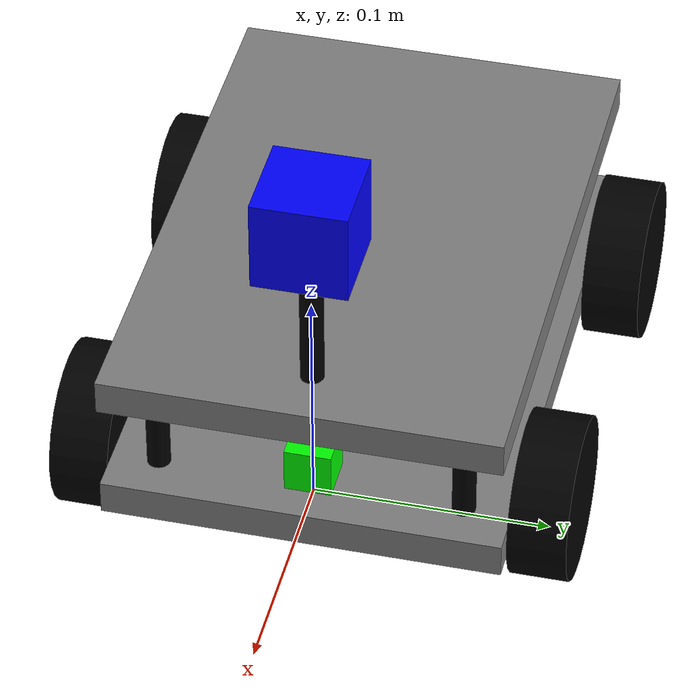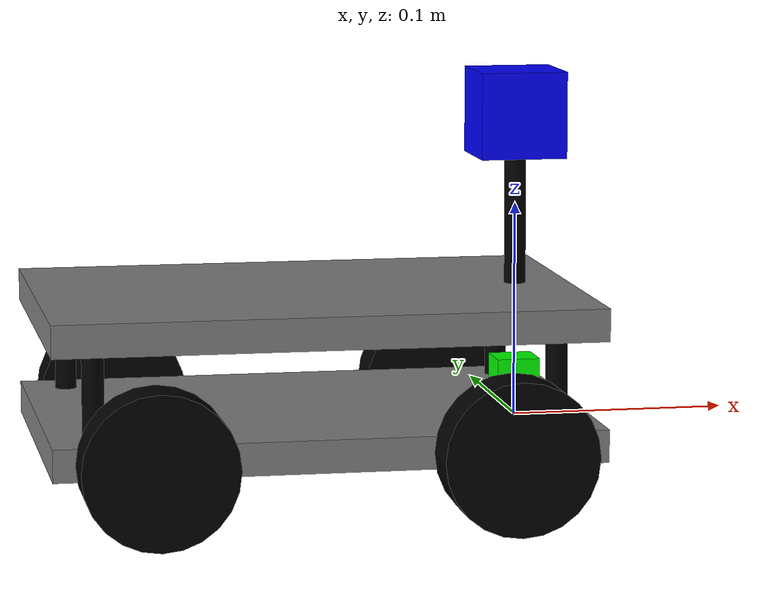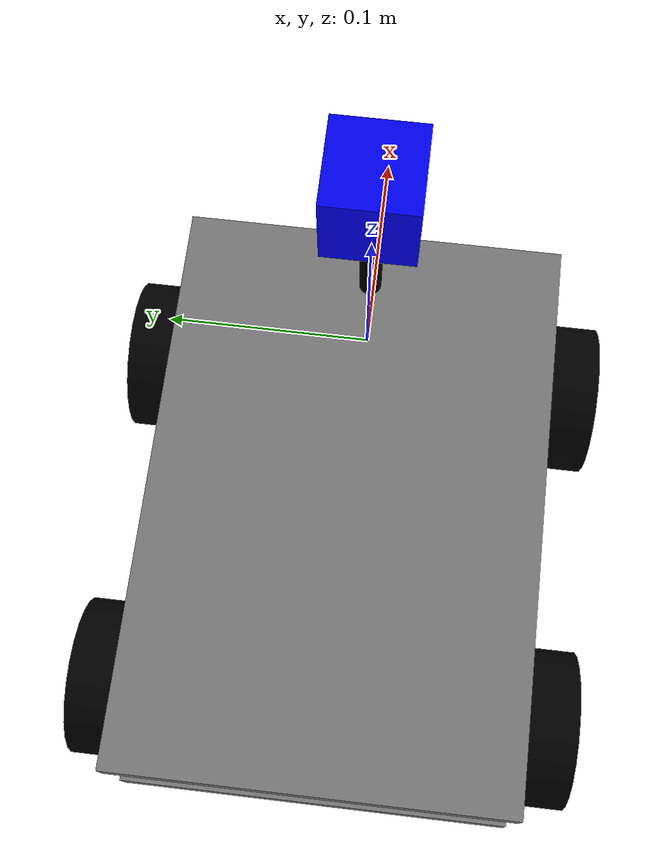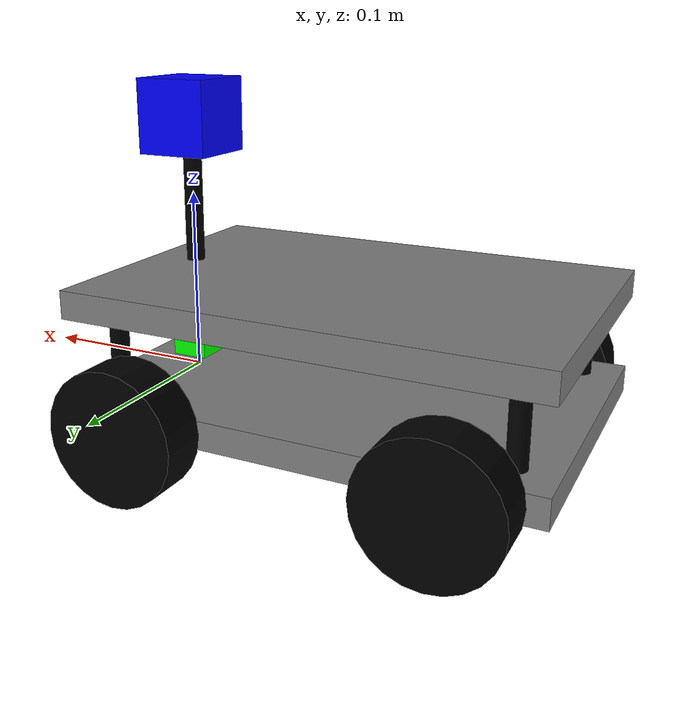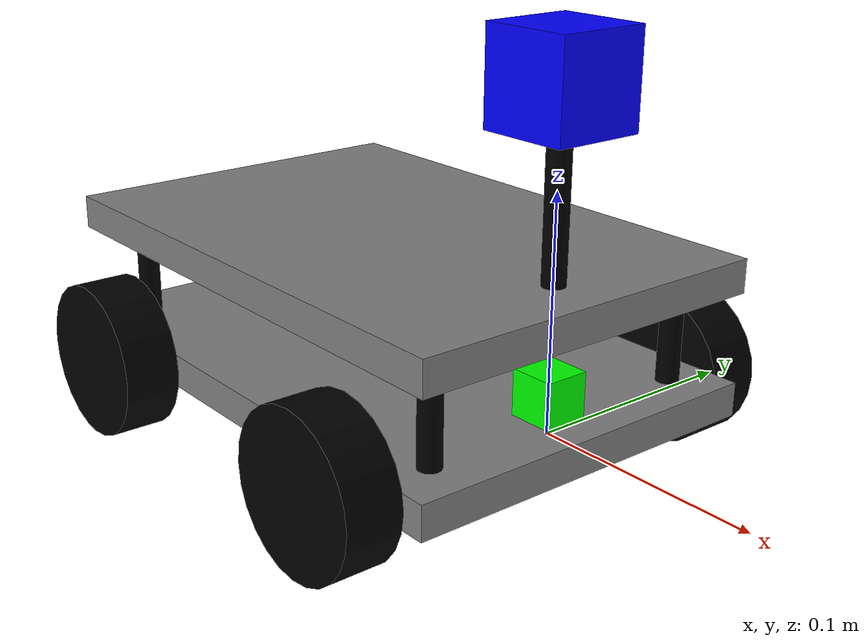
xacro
<?xml version="1.0"?>
<robot xmlns:xacro="http://www.ros.org/wiki/xacro" name="my_robot">

  <!-- ===================== XACRO ARGUMENTS ===================== -->
  <xacro:arg name="config_path" default="" />
  <xacro:property name="config_path" value="$(arg config_path)" />

  <!-- ===================== MATERIAL DEFINITIONS ===================== -->
  <material name="gray">
    <color rgba="0.5 0.5 0.5 1"/>
  </material>
  <material name="blue">
    <color rgba="0 0 1 1"/>
  </material>
  <material name="black">
    <color rgba="0 0 0 1"/>
  </material>
  <material name="green">
    <color rgba="0 1 0 1"/>
  </material>
  <material name="red">
    <color rgba="1 0 0 1"/>
  </material>

  <!-- ===================== PARAMETERS ===================== -->
  <xacro:property name="robot_length" value="0.25"/>
  <xacro:property name="robot_width" value="0.17"/>
  <xacro:property name="plank_height" value="0.015"/>
  <xacro:property name="plank_spacing" value="0.04"/>
  <xacro:property name="wheel_radius" value="0.035"/>
  <xacro:property name="wheel_width" value="0.025"/>
  <xacro:property name="rod_radius" value="0.005"/>
  <xacro:property name="rod_height" value="0.04"/>
  <xacro:property name="camera_mount_height" value="0.06"/>

  <!-- ===================== BASE LINK (Origin at camera X,Y position, ground Z) ===================== -->
  <link name="base_link"/>

  <!-- ===================== ROBOT BODY (Bottom Plank) ===================== -->
  <link name="robot_body">
    <visual>
      <geometry><box size="${robot_length} ${robot_width} ${plank_height}"/></geometry>
      <material name="gray"/>
    </visual>
    <collision>
      <geometry><box size="${robot_length} ${robot_width} ${plank_height}"/></geometry>
    </collision>
    <inertial>
      <mass value="1.5"/>
      <inertia ixx="0.01" iyy="0.015" izz="0.02" ixy="0" ixz="0" iyz="0"/>
      <origin xyz="0 0 0"/>
    </inertial>
  </link>

  <joint name="base_to_body_joint" type="fixed">
    <parent link="base_link"/>
    <child link="robot_body"/>
    <origin xyz="-0.10 0 0"/>
  </joint>

  <!-- ===================== TOP PLANK ===================== -->
  <link name="top_plank">
    <visual>
      <geometry><box size="${robot_length} ${robot_width} ${plank_height}"/></geometry>
      <material name="gray"/>
    </visual>
    <collision>
      <geometry><box size="${robot_length} ${robot_width} ${plank_height}"/></geometry>
    </collision>
    <inertial>
      <mass value="1.5"/>
      <inertia ixx="0.01" iyy="0.015" izz="0.02" ixy="0" ixz="0" iyz="0"/>
      <origin xyz="0 0 0"/>
    </inertial>
  </link>

  <joint name="top_plank_joint" type="fixed">
    <parent link="robot_body"/>
    <child link="top_plank"/>
    <origin xyz="0 0 ${plank_spacing + plank_height}"/>
  </joint>

  <!-- ===================== CORNER RODS ===================== -->
  <!-- Front Left Rod -->
  <link name="rod_fl">
    <visual>
      <geometry><cylinder radius="${rod_radius}" length="${rod_height}"/></geometry>
      <material name="black"/>
    </visual>
    <collision>
      <geometry><cylinder radius="${rod_radius}" length="${rod_height}"/></geometry>
    </collision>
    <inertial>
      <mass value="0.05"/>
      <inertia ixx="0.00001" iyy="0.00001" izz="0.00001" ixy="0" ixz="0" iyz="0"/>
    </inertial>
  </link>
  <joint name="rod_fl_joint" type="fixed">
    <parent link="robot_body"/>
    <child link="rod_fl"/>
    <origin xyz="${robot_length/2 - 0.02} ${robot_width/2 - 0.02} ${plank_height/2 + rod_height/2}"/>
  </joint>

  <!-- Front Right Rod -->
  <link name="rod_fr">
    <visual>
      <geometry><cylinder radius="${rod_radius}" length="${rod_height}"/></geometry>
      <material name="black"/>
    </visual>
    <collision>
      <geometry><cylinder radius="${rod_radius}" length="${rod_height}"/></geometry>
    </collision>
    <inertial>
      <mass value="0.05"/>
      <inertia ixx="0.00001" iyy="0.00001" izz="0.00001" ixy="0" ixz="0" iyz="0"/>
    </inertial>
  </link>
  <joint name="rod_fr_joint" type="fixed">
    <parent link="robot_body"/>
    <child link="rod_fr"/>
    <origin xyz="${robot_length/2 - 0.02} -${robot_width/2 - 0.02} ${plank_height/2 + rod_height/2}"/>
  </joint>

  <!-- Rear Left Rod -->
  <link name="rod_rl">
    <visual>
      <geometry><cylinder radius="${rod_radius}" length="${rod_height}"/></geometry>
      <material name="black"/>
    </visual>
    <collision>
      <geometry><cylinder radius="${rod_radius}" length="${rod_height}"/></geometry>
    </collision>
    <inertial>
      <mass value="0.05"/>
      <inertia ixx="0.00001" iyy="0.00001" izz="0.00001" ixy="0" ixz="0" iyz="0"/>
    </inertial>
  </link>
  <joint name="rod_rl_joint" type="fixed">
    <parent link="robot_body"/>
    <child link="rod_rl"/>
    <origin xyz="-${robot_length/2 - 0.02} ${robot_width/2 - 0.02} ${plank_height/2 + rod_height/2}"/>
  </joint>

  <!-- Rear Right Rod -->
  <link name="rod_rr">
    <visual>
      <geometry><cylinder radius="${rod_radius}" length="${rod_height}"/></geometry>
      <material name="black"/>
    </visual>
    <collision>
      <geometry><cylinder radius="${rod_radius}" length="${rod_height}"/></geometry>
    </collision>
    <inertial>
      <mass value="0.05"/>
      <inertia ixx="0.00001" iyy="0.00001" izz="0.00001" ixy="0" ixz="0" iyz="0"/>
    </inertial>
  </link>
  <joint name="rod_rr_joint" type="fixed">
    <parent link="robot_body"/>
    <child link="rod_rr"/>
    <origin xyz="-${robot_length/2 - 0.02} -${robot_width/2 - 0.02} ${plank_height/2 + rod_height/2}"/>
  </joint>

  <!-- ===================== CAMERA MOUNT ROD ===================== -->
  <link name="camera_mount">
    <visual>
      <geometry><cylinder radius="${rod_radius}" length="${camera_mount_height}"/></geometry>
      <material name="black"/>
    </visual>
    <collision>
      <geometry><cylinder radius="${rod_radius}" length="${camera_mount_height}"/></geometry>
    </collision>
    <inertial>
      <mass value="0.05"/>
      <inertia ixx="0.00001" iyy="0.00001" izz="0.00001" ixy="0" ixz="0" iyz="0"/>
    </inertial>
  </link>
  <joint name="camera_mount_joint" type="fixed">
    <parent link="top_plank"/>
    <child link="camera_mount"/>
    <origin xyz="0.10 0 ${plank_height/2 + camera_mount_height/2}"/>
  </joint>

  <!-- ===================== CAMERA LINK ===================== -->
  <link name="camera_link">
    <visual>
      <geometry><box size="0.04 0.04 0.04"/></geometry>
      <material name="blue"/>
    </visual>
    <collision>
      <geometry><box size="0.04 0.04 0.04"/></geometry>
    </collision>
    <inertial>
      <mass value="0.1"/>
      <origin xyz="0 0 0"/>
      <inertia ixx="0.00001" ixy="0.0" ixz="0.0"
               iyy="0.00001" iyz="0.0"
               izz="0.00001"/>
    </inertial>
  </link>

  <!-- Revolute joint for camera oscillation (improves feature tracking, not depth) -->
  <joint name="camera_pan_joint" type="continuous">
    <parent link="camera_mount"/>
    <child link="camera_link"/>
    <origin xyz="0 0 ${camera_mount_height/2 + 0.02}"/>
    <axis xyz="0 0 1"/>
    <dynamics damping="0.01" friction="0.0"/>
  </joint>

  <!-- Camera optical frame (ROS convention: Z forward, X right, Y down) -->
  <link name="camera_link_optical"/>

  <joint name="camera_optical_joint" type="fixed">
    <parent link="camera_link"/>
    <child link="camera_link_optical"/>
    <!-- Rotate from camera_link (Z up) to optical frame (Z forward) -->
    <origin xyz="0 0 0" rpy="${-pi/2} 0 ${-pi/2}"/>
  </joint>

  <!-- ===================== IMU LINK ===================== -->
  <link name="imu_link">
    <visual>
      <geometry><box size="0.02 0.02 0.02"/></geometry>
      <material name="green"/>
    </visual>
  </link>

  <joint name="imu_joint" type="fixed">
    <parent link="robot_body"/>
    <child link="imu_link"/>
    <origin xyz="0.10 0 ${plank_height/2 + 0.01}"/>
  </joint>

  <!-- ===================== WHEELS ===================== -->
  <!-- Front Left -->
  <link name="wheel_fl">
    <visual>
      <geometry><cylinder radius="${wheel_radius}" length="${wheel_width}"/></geometry>
      <origin xyz="0 0 0" rpy="0 0 0"/>
      <material name="black"/>
    </visual>
    <collision>
      <geometry><cylinder radius="${wheel_radius}" length="${wheel_width}"/></geometry>
      <origin xyz="0 0 0" rpy="0 0 0"/>
    </collision>
    <inertial>
      <mass value="0.1"/>
      <inertia ixx="0.0001" iyy="0.0001" izz="0.0001" ixy="0" ixz="0" iyz="0"/>
    </inertial>
  </link>
  <joint name="joint_wheel_fl" type="continuous">
    <parent link="robot_body"/>
    <child link="wheel_fl"/>
    <origin xyz="0.08 ${robot_width/2 + wheel_width/2} 0" rpy="-1.5707 0 0"/>
    <axis xyz="0 0 1"/>
  </joint>

  <!-- Rear Left -->
  <link name="wheel_rl">
    <visual>
      <geometry><cylinder radius="${wheel_radius}" length="${wheel_width}"/></geometry>
      <origin xyz="0 0 0" rpy="0 0 0"/>
      <material name="black"/>
    </visual>
    <collision>
      <geometry><cylinder radius="${wheel_radius}" length="${wheel_width}"/></geometry>
      <origin xyz="0 0 0" rpy="0 0 0"/>
    </collision>
    <inertial>
      <mass value="0.1"/>
      <inertia ixx="0.0001" iyy="0.0001" izz="0.0001" ixy="0" ixz="0" iyz="0"/>
    </inertial>
  </link>
  <joint name="joint_wheel_rl" type="continuous">
    <parent link="robot_body"/>
    <child link="wheel_rl"/>
    <origin xyz="-0.08 ${robot_width/2 + wheel_width/2} 0" rpy="-1.5707 0 0"/>
    <axis xyz="0 0 1"/>
  </joint>

  <!-- Front Right -->
  <link name="wheel_fr">
    <visual>
      <geometry><cylinder radius="${wheel_radius}" length="${wheel_width}"/></geometry>
      <origin xyz="0 0 0" rpy="0 0 0"/>
      <material name="black"/>
    </visual>
    <collision>
      <geometry><cylinder radius="${wheel_radius}" length="${wheel_width}"/></geometry>
      <origin xyz="0 0 0" rpy="0 0 0"/>
    </collision>
    <inertial>
      <mass value="0.1"/>
      <inertia ixx="0.0001" iyy="0.0001" izz="0.0001" ixy="0" ixz="0" iyz="0"/>
    </inertial>
  </link>
  <joint name="joint_wheel_fr" type="continuous">
    <parent link="robot_body"/>
    <child link="wheel_fr"/>
    <origin xyz="0.08 -${robot_width/2 + wheel_width/2} 0" rpy="-1.5707 0 0"/>
    <axis xyz="0 0 1"/>
  </joint>

  <!-- Rear Right -->
  <link name="wheel_rr">
    <visual>
      <geometry><cylinder radius="${wheel_radius}" length="${wheel_width}"/></geometry>
      <origin xyz="0 0 0" rpy="0 0 0"/>
      <material name="black"/>
    </visual>
    <collision>
      <geometry><cylinder radius="${wheel_radius}" length="${wheel_width}"/></geometry>
      <origin xyz="0 0 0" rpy="0 0 0"/>
    </collision>
    <inertial>
      <mass value="0.1"/>
      <inertia ixx="0.0001" iyy="0.0001" izz="0.0001" ixy="0" ixz="0" iyz="0"/>
    </inertial>
  </link>
  <joint name="joint_wheel_rr" type="continuous">
    <parent link="robot_body"/>
    <child link="wheel_rr"/>
    <origin xyz="-0.08 -${robot_width/2 + wheel_width/2} 0" rpy="-1.5707 0 0"/>
    <axis xyz="0 0 1"/>
  </joint>

  <!-- ===================== GAZEBO COLORS ===================== -->
  <gazebo reference="robot_body">
    <material>Gazebo/Grey</material>
  </gazebo>
  <gazebo reference="top_plank">
    <material>Gazebo/Grey</material>
  </gazebo>
  <gazebo reference="rod_fl">
    <material>Gazebo/Black</material>
  </gazebo>
  <gazebo reference="rod_fr">
    <material>Gazebo/Black</material>
  </gazebo>
  <gazebo reference="rod_rl">
    <material>Gazebo/Black</material>
  </gazebo>
  <gazebo reference="rod_rr">
    <material>Gazebo/Black</material>
  </gazebo>
  <gazebo reference="camera_mount">
    <material>Gazebo/Black</material>
  </gazebo>
  <gazebo reference="wheel_fl">
    <material>Gazebo/Black</material>
    <mu1>1.0</mu1>
    <mu2>1.0</mu2>
    <kp>1000000.0</kp>
    <kd>100.0</kd>
    <minDepth>0.001</minDepth>
    <maxVel>1.0</maxVel>
  </gazebo>
  <gazebo reference="wheel_rl">
    <material>Gazebo/Black</material>
    <mu1>0.1</mu1>
    <mu2>0.1</mu2>
    <kp>1000000.0</kp>
    <kd>100.0</kd>
    <minDepth>0.001</minDepth>
    <maxVel>1.0</maxVel>
  </gazebo>
  <gazebo reference="wheel_fr">
    <material>Gazebo/Black</material>
    <mu1>1.0</mu1>
    <mu2>1.0</mu2>
    <kp>1000000.0</kp>
    <kd>100.0</kd>
    <minDepth>0.001</minDepth>
    <maxVel>1.0</maxVel>
  </gazebo>
  <gazebo reference="wheel_rr">
    <material>Gazebo/Black</material>
    <mu1>0.1</mu1>
    <mu2>0.1</mu2>
    <kp>1000000.0</kp>
    <kd>100.0</kd>
    <minDepth>0.001</minDepth>
    <maxVel>1.0</maxVel>
  </gazebo>
  <gazebo reference="camera_link">
    <material>Gazebo/Blue</material>
  </gazebo>
  <gazebo reference="imu_link">
    <material>Gazebo/Green</material>
  </gazebo>

  <!-- ===================== GAZEBO PLUGINS ===================== -->

  <!-- Differential Drive (using front wheels) -->
  <gazebo>
    <plugin name="diff_drive" filename="libgazebo_ros_diff_drive.so">
      <update_rate>50</update_rate>

      <!-- Wheel joints -->
      <left_joint>joint_wheel_fl</left_joint>
      <right_joint>joint_wheel_fr</right_joint>

      <!-- Kinematics -->
      <wheel_separation>0.195</wheel_separation>
      <wheel_diameter>0.07</wheel_diameter>

      <!-- Limits -->
      <max_wheel_torque>20</max_wheel_torque>
      <max_wheel_acceleration>1.0</max_wheel_acceleration>

      <!-- Output -->
      <publish_odom>true</publish_odom>
      <publish_odom_tf>true</publish_odom_tf>
      <publish_wheel_tf>true</publish_wheel_tf>

      <odometry_frame>odom</odometry_frame>
      <robot_base_frame>base_link</robot_base_frame>

      <!-- ROS 2 topics -->
      <ros>
        <namespace>/</namespace>
        <remapping>cmd_vel:=cmd_vel</remapping>
        <remapping>odom:=odom</remapping>
      </ros>
    </plugin>
  </gazebo>

  <!-- IMU Plugin -->
  <gazebo reference="imu_link">
    <sensor name="imu_sensor" type="imu">
      <always_on>true</always_on>
      <update_rate>100</update_rate>
      <imu>
        <angular_velocity>
          <x>
            <noise type="gaussian">
              <mean>0.0</mean>
              <stddev>2e-4</stddev>
            </noise>
          </x>
          <y>
            <noise type="gaussian">
              <mean>0.0</mean>
              <stddev>2e-4</stddev>
            </noise>
          </y>
          <z>
            <noise type="gaussian">
              <mean>0.0</mean>
              <stddev>2e-4</stddev>
            </noise>
          </z>
        </angular_velocity>
        <linear_acceleration>
          <x>
            <noise type="gaussian">
              <mean>0.0</mean>
              <stddev>1.7e-2</stddev>
            </noise>
          </x>
          <y>
            <noise type="gaussian">
              <mean>0.0</mean>
              <stddev>1.7e-2</stddev>
            </noise>
          </y>
          <z>
            <noise type="gaussian">
              <mean>0.0</mean>
              <stddev>1.7e-2</stddev>
            </noise>
          </z>
        </linear_acceleration>
      </imu>
      <plugin name="imu_plugin" filename="libgazebo_ros_imu_sensor.so">
        <ros>
          <namespace>/</namespace>
          <remapping>~/out:=imu/data</remapping>
        </ros>
        <initial_orientation_as_reference>false</initial_orientation_as_reference>
      </plugin>
    </sensor>
  </gazebo>

  <!-- Camera Plugin -->
  <gazebo reference="camera_link">
    <sensor type="camera" name="camera_sensor">
      <update_rate>20</update_rate>
      <camera>
        <horizontal_fov>1.05</horizontal_fov>
        <image>
          <width>640</width>
          <height>480</height>
          <format>R8G8B8</format>
        </image>
      </camera>
      <plugin name="camera_controller" filename="libgazebo_ros_camera.so">
        <ros>
          <namespace>/</namespace>
          <remapping>image_raw:=camera_sensor/image_raw</remapping>
          <remapping>camera_info:=camera_sensor/camera_info</remapping>
        </ros>
        <frame_name>camera_link_optical</frame_name>
      </plugin>
    </sensor>
  </gazebo>

  <!-- ===================== CAMERA JOINT CONTROL ===================== -->
  <!-- Joint State Publisher -->
  <gazebo>
    <plugin name="gazebo_ros_joint_state_publisher" filename="libgazebo_ros_joint_state_publisher.so">
      <update_rate>50</update_rate>
      <joint_name>camera_pan_joint</joint_name>
      <joint_name>joint_wheel_fl</joint_name>
      <joint_name>joint_wheel_fr</joint_name>
      <joint_name>joint_wheel_rl</joint_name>
      <joint_name>joint_wheel_rr</joint_name>
    </plugin>
  </gazebo>

  <!-- Camera joint position control -->
  <gazebo>
    <plugin name="camera_joint_control" filename="libgazebo_ros_joint_pose_trajectory.so">
      <update_rate>50</update_rate>
      <ros>
        <namespace>/</namespace>
      </ros>
    </plugin>
  </gazebo>

</robot>
